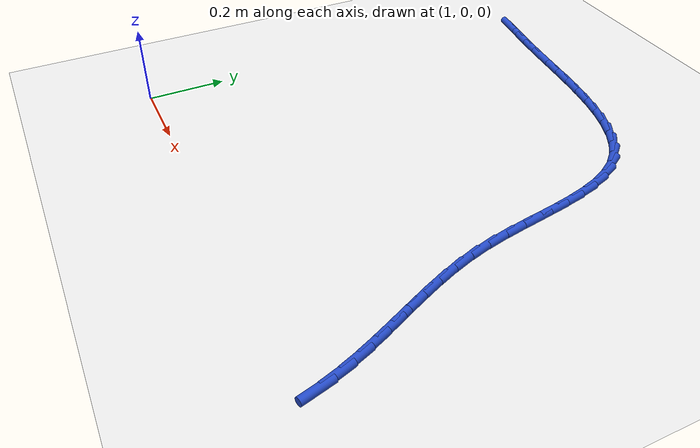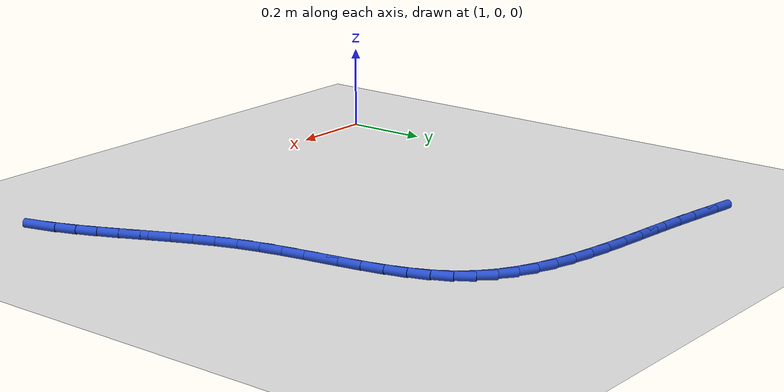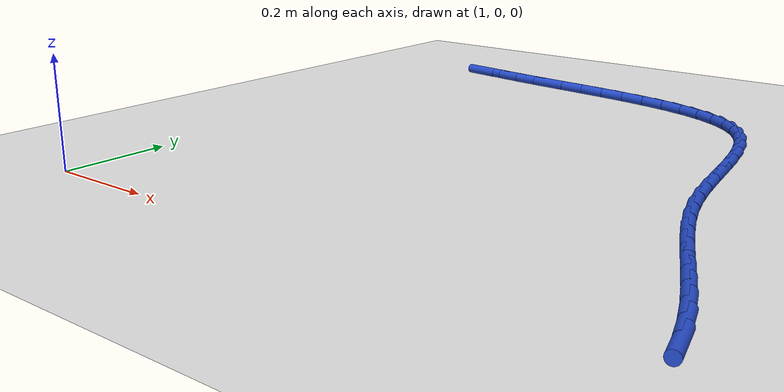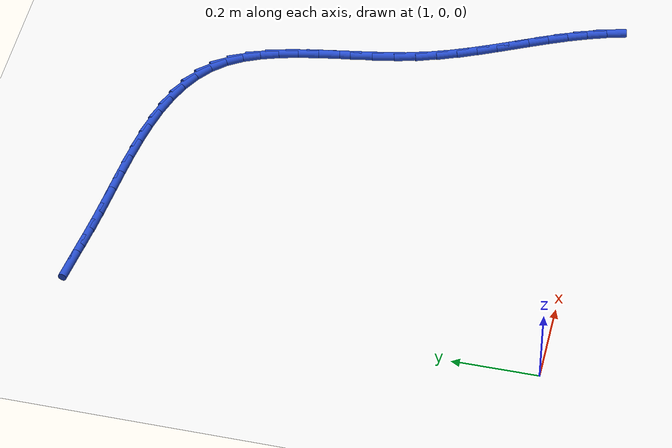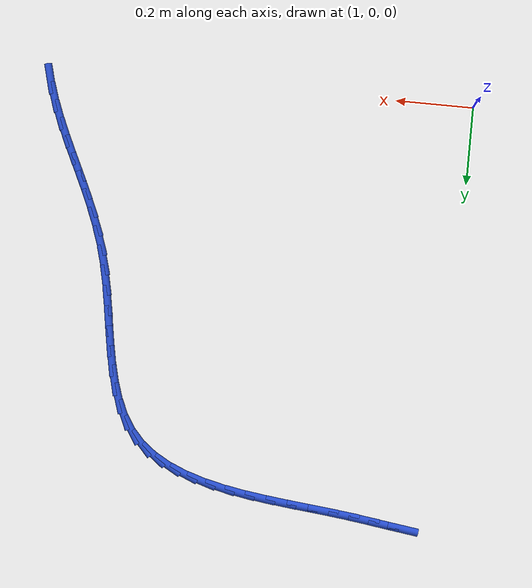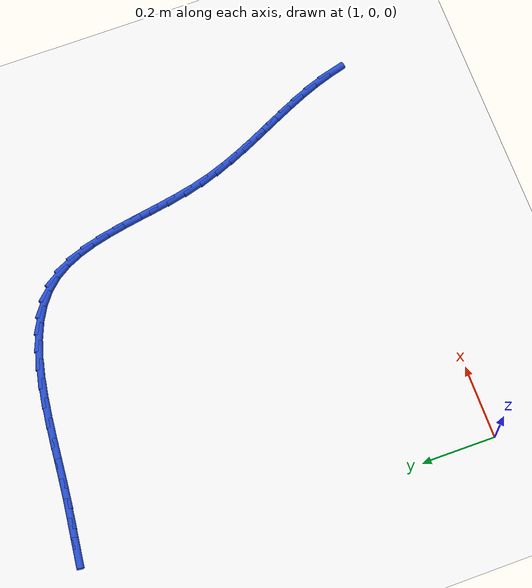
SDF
<sdf version="1.6">
 <world name="default">
  <model name="ground_plane">
   <static>1</static>
   <link name="link">
    <collision name="collision">
     <geometry><plane><normal>0 0 1</normal><size>100 100</size></plane></geometry>
     <surface><friction><ode><mu>100</mu><mu2>50</mu2></ode></friction></surface>
    </collision>
    <visual name="visual">
     <cast_shadows>0</cast_shadows>
     <geometry><plane><normal>0 0 1</normal><size>100 100</size></plane></geometry>
     <material>
      <script><uri>file://media/materials/scripts/gazebo.material</uri><name>Gazebo/WhiteGlow</name></script>
     </material>
    </visual>
   </link>
  </model>
  <model name="line">
   <link name="link_35">
    <pose>1.0835830404473121 1.097910371502654 0.01 0 1.57 -0.13791955061841746</pose>
    <collision name="collision">
     <geometry><cylinder><radius>0.01</radius><length>0.08</length></cylinder></geometry>
    </collision>
    <visual name="visual">
     <material>
      <script><name>Gazebo/Blue</name><uri>file://media/materials/scripts/gazebo.material</uri></script>
     </material>
     <geometry><cylinder><radius>0.01</radius><length>0.08</length></cylinder></geometry>
    </visual>
   </link>
   <link name="link_36">
    <pose>1.1334664755902453 1.0909865133504753 0.01 0 1.57 -0.14102209893917067</pose>
    <collision name="collision">
     <geometry><cylinder><radius>0.01</radius><length>0.08</length></cylinder></geometry>
    </collision>
    <visual name="visual">
     <material>
      <script><name>Gazebo/Blue</name><uri>file://media/materials/scripts/gazebo.material</uri></script>
     </material>
     <geometry><cylinder><radius>0.01</radius><length>0.08</length></cylinder></geometry>
    </visual>
   </link>
   <link name="link_37">
    <pose>1.1845084244990347 1.0837403715393152 0.01 0 1.57 -0.13015006558396924</pose>
    <collision name="collision">
     <geometry><cylinder><radius>0.01</radius><length>0.08</length></cylinder></geometry>
    </collision>
    <visual name="visual">
     <material>
      <script><name>Gazebo/Blue</name><uri>file://media/materials/scripts/gazebo.material</uri></script>
     </material>
     <geometry><cylinder><radius>0.01</radius><length>0.08</length></cylinder></geometry>
    </visual>
   </link>
   <link name="link_38">
    <pose>1.2368927880006957 1.076883784739022 0.01 0 1.57 -0.11209958004925503</pose>
    <collision name="collision">
     <geometry><cylinder><radius>0.01</radius><length>0.08</length></cylinder></geometry>
    </collision>
    <visual name="visual">
     <material>
      <script><name>Gazebo/Blue</name><uri>file://media/materials/scripts/gazebo.material</uri></script>
     </material>
     <geometry><cylinder><radius>0.01</radius><length>0.08</length></cylinder></geometry>
    </visual>
   </link>
   <link name="link_39">
    <pose>1.2906162674651203 1.0708360514287223 0.01 0 1.57 -0.10306394920933935</pose>
    <collision name="collision">
     <geometry><cylinder><radius>0.01</radius><length>0.08</length></cylinder></geometry>
    </collision>
    <visual name="visual">
     <material>
      <script><name>Gazebo/Blue</name><uri>file://media/materials/scripts/gazebo.material</uri></script>
     </material>
     <geometry><cylinder><radius>0.01</radius><length>0.08</length></cylinder></geometry>
    </visual>
   </link>
   <link name="link_40">
    <pose>1.3451502661486434 1.0651955766261825 0.01 0 1.57 -0.10518876523561257</pose>
    <collision name="collision">
     <geometry><cylinder><radius>0.01</radius><length>0.08</length></cylinder></geometry>
    </collision>
    <visual name="visual">
     <material>
      <script><name>Gazebo/Blue</name><uri>file://media/materials/scripts/gazebo.material</uri></script>
     </material>
     <geometry><cylinder><radius>0.01</radius><length>0.08</length></cylinder></geometry>
    </visual>
   </link>
   <link name="link_41">
    <pose>1.3998747355774677 1.0594178519722455 0.01 0 1.57 -0.1184137800177648</pose>
    <collision name="collision">
     <geometry><cylinder><radius>0.01</radius><length>0.08</length></cylinder></geometry>
    </collision>
    <visual name="visual">
     <material>
      <script><name>Gazebo/Blue</name><uri>file://media/materials/scripts/gazebo.material</uri></script>
     </material>
     <geometry><cylinder><radius>0.01</radius><length>0.08</length></cylinder></geometry>
    </visual>
   </link>
   <link name="link_42">
    <pose>1.4541696272777922 1.0529583691077546 0.01 0 1.57 -0.14335598295028892</pose>
    <collision name="collision">
     <geometry><cylinder><radius>0.01</radius><length>0.08</length></cylinder></geometry>
    </collision>
    <visual name="visual">
     <material>
      <script><name>Gazebo/Blue</name><uri>file://media/materials/scripts/gazebo.material</uri></script>
     </material>
     <geometry><cylinder><radius>0.01</radius><length>0.08</length></cylinder></geometry>
    </visual>
   </link>
   <link name="link_43">
    <pose>1.5074148927758175 1.0452726196735527 0.01 0 1.57 -0.18133852121102176</pose>
    <collision name="collision">
     <geometry><cylinder><radius>0.01</radius><length>0.08</length></cylinder></geometry>
    </collision>
    <visual name="visual">
     <material>
      <script><name>Gazebo/Blue</name><uri>file://media/materials/scripts/gazebo.material</uri></script>
     </material>
     <geometry><cylinder><radius>0.01</radius><length>0.08</length></cylinder></geometry>
    </visual>
   </link>
   <link name="link_44">
    <pose>1.5589904835977457 1.0358160953104836 0.01 0 1.57 -0.23445499094795766</pose>
    <collision name="collision">
     <geometry><cylinder><radius>0.01</radius><length>0.08</length></cylinder></geometry>
    </collision>
    <visual name="visual">
     <material>
      <script><name>Gazebo/Blue</name><uri>file://media/materials/scripts/gazebo.material</uri></script>
     </material>
     <geometry><cylinder><radius>0.01</radius><length>0.08</length></cylinder></geometry>
    </visual>
   </link>
   <link name="link_45">
    <pose>1.6082763512697755 1.0240442876593898 0.01 0 1.57 -0.30561446821415944</pose>
    <collision name="collision">
     <geometry><cylinder><radius>0.01</radius><length>0.08</length></cylinder></geometry>
    </collision>
    <visual name="visual">
     <material>
      <script><name>Gazebo/Blue</name><uri>file://media/materials/scripts/gazebo.material</uri></script>
     </material>
     <geometry><cylinder><radius>0.01</radius><length>0.08</length></cylinder></geometry>
    </visual>
   </link>
   <link name="link_46">
    <pose>1.6546524473181086 1.0094126883611152 0.01 0 1.57 -0.3984304966839086</pose>
    <collision name="collision">
     <geometry><cylinder><radius>0.01</radius><length>0.08</length></cylinder></geometry>
    </collision>
    <visual name="visual">
     <material>
      <script><name>Gazebo/Blue</name><uri>file://media/materials/scripts/gazebo.material</uri></script>
     </material>
     <geometry><cylinder><radius>0.01</radius><length>0.08</length></cylinder></geometry>
    </visual>
   </link>
   <link name="link_47">
    <pose>1.6974987232689447 0.9913767890565026 0.01 0 1.57 -0.516658266013193</pose>
    <collision name="collision">
     <geometry><cylinder><radius>0.01</radius><length>0.08</length></cylinder></geometry>
    </collision>
    <visual name="visual">
     <material>
      <script><name>Gazebo/Blue</name><uri>file://media/materials/scripts/gazebo.material</uri></script>
     </material>
     <geometry><cylinder><radius>0.01</radius><length>0.08</length></cylinder></geometry>
    </visual>
   </link>
   <link name="link_48">
    <pose>1.7361951306484844 0.9693920813863948 0.01 0 1.57 -0.6627077543794281</pose>
    <collision name="collision">
     <geometry><cylinder><radius>0.01</radius><length>0.08</length></cylinder></geometry>
    </collision>
    <visual name="visual">
     <material>
      <script><name>Gazebo/Blue</name><uri>file://media/materials/scripts/gazebo.material</uri></script>
     </material>
     <geometry><cylinder><radius>0.01</radius><length>0.08</length></cylinder></geometry>
    </visual>
   </link>
   <link name="link_49">
    <pose>1.7701216209829285 0.9429140569916358 0.01 0 1.57 -0.8349144943348729</pose>
    <collision name="collision">
     <geometry><cylinder><radius>0.01</radius><length>0.08</length></cylinder></geometry>
    </collision>
    <visual name="visual">
     <material>
      <script><name>Gazebo/Blue</name><uri>file://media/materials/scripts/gazebo.material</uri></script>
     </material>
     <geometry><cylinder><radius>0.01</radius><length>0.08</length></cylinder></geometry>
    </visual>
   </link>
   <link name="link_50">
    <pose>1.798659930465634 0.911399728550578 0.01 0 1.57 -1.0119823204613876</pose>
    <collision name="collision">
     <geometry><cylinder><radius>0.01</radius><length>0.08</length></cylinder></geometry>
    </collision>
    <visual name="visual">
     <material>
      <script><name>Gazebo/Blue</name><uri>file://media/materials/scripts/gazebo.material</uri></script>
     </material>
     <geometry><cylinder><radius>0.01</radius><length>0.08</length></cylinder></geometry>
    </visual>
   </link>
   <link name="link_51">
    <pose>1.821624120006522 0.8746745707867749 0.01 0 1.57 -1.1554727165125553</pose>
    <collision name="collision">
     <geometry><cylinder><radius>0.01</radius><length>0.08</length></cylinder></geometry>
    </collision>
    <visual name="visual">
     <material>
      <script><name>Gazebo/Blue</name><uri>file://media/materials/scripts/gazebo.material</uri></script>
     </material>
     <geometry><cylinder><radius>0.01</radius><length>0.08</length></cylinder></geometry>
    </visual>
   </link>
   <link name="link_52">
    <pose>1.8398207835432094 0.8334099752434747 0.01 0 1.57 -1.26170079862764</pose>
    <collision name="collision">
     <geometry><cylinder><radius>0.01</radius><length>0.08</length></cylinder></geometry>
    </collision>
    <visual name="visual">
     <material>
      <script><name>Gazebo/Blue</name><uri>file://media/materials/scripts/gazebo.material</uri></script>
     </material>
     <geometry><cylinder><radius>0.01</radius><length>0.08</length></cylinder></geometry>
    </visual>
   </link>
   <link name="link_53">
    <pose>1.8541952541192648 0.7883955781368996 0.01 0 1.57 -1.3355723208216845</pose>
    <collision name="collision">
     <geometry><cylinder><radius>0.01</radius><length>0.08</length></cylinder></geometry>
    </collision>
    <visual name="visual">
     <material>
      <script><name>Gazebo/Blue</name><uri>file://media/materials/scripts/gazebo.material</uri></script>
     </material>
     <geometry><cylinder><radius>0.01</radius><length>0.08</length></cylinder></geometry>
    </visual>
   </link>
   <link name="link_54">
    <pose>1.865692864778256 0.740421015683271 0.01 0 1.57 -1.3822931482762668</pose>
    <collision name="collision">
     <geometry><cylinder><radius>0.01</radius><length>0.08</length></cylinder></geometry>
    </collision>
    <visual name="visual">
     <material>
      <script><name>Gazebo/Blue</name><uri>file://media/materials/scripts/gazebo.material</uri></script>
     </material>
     <geometry><cylinder><radius>0.01</radius><length>0.08</length></cylinder></geometry>
    </visual>
   </link>
   <link name="link_55">
    <pose>1.8752589485637536 0.6902759240988106 0.01 0 1.57 -1.4057944530006135</pose>
    <collision name="collision">
     <geometry><cylinder><radius>0.01</radius><length>0.08</length></cylinder></geometry>
    </collision>
    <visual name="visual">
     <material>
      <script><name>Gazebo/Blue</name><uri>file://media/materials/scripts/gazebo.material</uri></script>
     </material>
     <geometry><cylinder><radius>0.01</radius><length>0.08</length></cylinder></geometry>
    </visual>
   </link>
   <link name="link_56">
    <pose>1.8838388385193252 0.638749939599741 0.01 0 1.57 -1.4083965509822691</pose>
    <collision name="collision">
     <geometry><cylinder><radius>0.01</radius><length>0.08</length></cylinder></geometry>
    </collision>
    <visual name="visual">
     <material>
      <script><name>Gazebo/Blue</name><uri>file://media/materials/scripts/gazebo.material</uri></script>
     </material>
     <geometry><cylinder><radius>0.01</radius><length>0.08</length></cylinder></geometry>
    </visual>
   </link>
   <link name="link_57">
    <pose>1.8923778676885405 0.5866326984022835 0.01 0 1.57 -1.3908736868109741</pose>
    <collision name="collision">
     <geometry><cylinder><radius>0.01</radius><length>0.08</length></cylinder></geometry>
    </collision>
    <visual name="visual">
     <material>
      <script><name>Gazebo/Blue</name><uri>file://media/materials/scripts/gazebo.material</uri></script>
     </material>
     <geometry><cylinder><radius>0.01</radius><length>0.08</length></cylinder></geometry>
    </visual>
   </link>
   <link name="link_58">
    <pose>1.901821369114968 0.5347138367226606 0.01 0 1.57 -1.3525888109360276</pose>
    <collision name="collision">
     <geometry><cylinder><radius>0.01</radius><length>0.08</length></cylinder></geometry>
    </collision>
    <visual name="visual">
     <material>
      <script><name>Gazebo/Blue</name><uri>file://media/materials/scripts/gazebo.material</uri></script>
     </material>
     <geometry><cylinder><radius>0.01</radius><length>0.08</length></cylinder></geometry>
    </visual>
   </link>
   <link name="link_59">
    <pose>1.9131146758421773 0.48378299077709386 0.01 0 1.57 -1.2935251363217228</pose>
    <collision name="collision">
     <geometry><cylinder><radius>0.01</radius><length>0.08</length></cylinder></geometry>
    </collision>
    <visual name="visual">
     <material>
      <script><name>Gazebo/Blue</name><uri>file://media/materials/scripts/gazebo.material</uri></script>
     </material>
     <geometry><cylinder><radius>0.01</radius><length>0.08</length></cylinder></geometry>
    </visual>
   </link>
   <link name="link_60">
    <pose>1.9271207796067409 0.43457007391937036 0.01 0 1.57 -1.2330121913697736</pose>
    <collision name="collision">
     <geometry><cylinder><radius>0.01</radius><length>0.08</length></cylinder></geometry>
    </collision>
    <visual name="visual">
     <material>
      <script><name>Gazebo/Blue</name><uri>file://media/materials/scripts/gazebo.material</uri></script>
     </material>
     <geometry><cylinder><radius>0.01</radius><length>0.08</length></cylinder></geometry>
    </visual>
   </link>
   <link name="link_61">
    <pose>1.9437814918213707 0.3871368594437208 0.01 0 1.57 -1.1851440554485118</pose>
    <collision name="collision">
     <geometry><cylinder><radius>0.01</radius><length>0.08</length></cylinder></geometry>
    </collision>
    <visual name="visual">
     <material>
      <script><name>Gazebo/Blue</name><uri>file://media/materials/scripts/gazebo.material</uri></script>
     </material>
     <geometry><cylinder><radius>0.01</radius><length>0.08</length></cylinder></geometry>
    </visual>
   </link>
   <link name="link_62">
    <pose>1.9624609901621886 0.34112615789716233 0.01 0 1.57 -1.1511803039369946</pose>
    <collision name="collision">
     <geometry><cylinder><radius>0.01</radius><length>0.08</length></cylinder></geometry>
    </collision>
    <visual name="visual">
     <material>
      <script><name>Gazebo/Blue</name><uri>file://media/materials/scripts/gazebo.material</uri></script>
     </material>
     <geometry><cylinder><radius>0.01</radius><length>0.08</length></cylinder></geometry>
    </visual>
   </link>
   <link name="link_63">
    <pose>1.9825145473095374 0.2961743209562179 0.01 0 1.57 -1.1317634952829647</pose>
    <collision name="collision">
     <geometry><cylinder><radius>0.01</radius><length>0.08</length></cylinder></geometry>
    </collision>
    <visual name="visual">
     <material>
      <script><name>Gazebo/Blue</name><uri>file://media/materials/scripts/gazebo.material</uri></script>
     </material>
     <geometry><cylinder><radius>0.01</radius><length>0.08</length></cylinder></geometry>
    </visual>
   </link>
   <link name="link_64">
    <pose>2.003297435943758 0.25191770029741223 0.01 0 1.57 -1.1272905435924727</pose>
    <collision name="collision">
     <geometry><cylinder><radius>0.01</radius><length>0.08</length></cylinder></geometry>
    </collision>
    <visual name="visual">
     <material>
      <script><name>Gazebo/Blue</name><uri>file://media/materials/scripts/gazebo.material</uri></script>
     </material>
     <geometry><cylinder><radius>0.01</radius><length>0.08</length></cylinder></geometry>
    </visual>
   </link>
   <link name="link_65">
    <pose>2.0241649287451904 0.2079926475972686 0.01 0 1.57 -1.1380236128151178</pose>
    <collision name="collision">
     <geometry><cylinder><radius>0.01</radius><length>0.08</length></cylinder></geometry>
    </collision>
    <visual name="visual">
     <material>
      <script><name>Gazebo/Blue</name><uri>file://media/materials/scripts/gazebo.material</uri></script>
     </material>
     <geometry><cylinder><radius>0.01</radius><length>0.08</length></cylinder></geometry>
    </visual>
   </link>
   <link name="link_66">
    <pose>2.0444722983941777 0.1640355145323107 0.01 0 1.57 -1.1641125654377675</pose>
    <collision name="collision">
     <geometry><cylinder><radius>0.01</radius><length>0.08</length></cylinder></geometry>
    </collision>
    <visual name="visual">
     <material>
      <script><name>Gazebo/Blue</name><uri>file://media/materials/scripts/gazebo.material</uri></script>
     </material>
     <geometry><cylinder><radius>0.01</radius><length>0.08</length></cylinder></geometry>
    </visual>
   </link>
   <link name="link_67">
    <pose>2.063574817571059 0.11968265277906295 0.01 0 1.57 -1.2055146921717141</pose>
    <collision name="collision">
     <geometry><cylinder><radius>0.01</radius><length>0.08</length></cylinder></geometry>
    </collision>
    <visual name="visual">
     <material>
      <script><name>Gazebo/Blue</name><uri>file://media/materials/scripts/gazebo.material</uri></script>
     </material>
     <geometry><cylinder><radius>0.01</radius><length>0.08</length></cylinder></geometry>
    </visual>
   </link>
   <link name="link_68">
    <pose>2.08082776053113 0.07457041529166024 0.01 0 1.57 -1.2590917931281338</pose>
    <collision name="collision">
     <geometry><cylinder><radius>0.01</radius><length>0.08</length></cylinder></geometry>
    </collision>
    <visual name="visual">
     <material>
      <script><name>Gazebo/Blue</name><uri>file://media/materials/scripts/gazebo.material</uri></script>
     </material>
     <geometry><cylinder><radius>0.01</radius><length>0.08</length></cylinder></geometry>
    </visual>
   </link>
   <link name="link_69">
    <pose>2.095696383156413 0.028424372813559154 0.01 0 1.57 -1.3143252042439373</pose>
    <collision name="collision">
     <geometry><cylinder><radius>0.01</radius><length>0.08</length></cylinder></geometry>
    </collision>
    <visual name="visual">
     <material>
      <script><name>Gazebo/Blue</name><uri>file://media/materials/scripts/gazebo.material</uri></script>
     </material>
     <geometry><cylinder><radius>0.01</radius><length>0.08</length></cylinder></geometry>
    </visual>
   </link>
  </model>
 </world>
</sdf>
